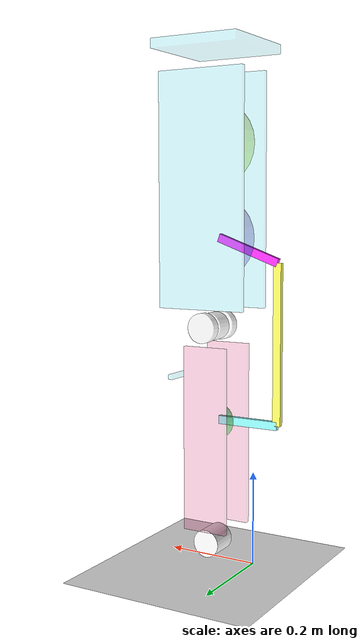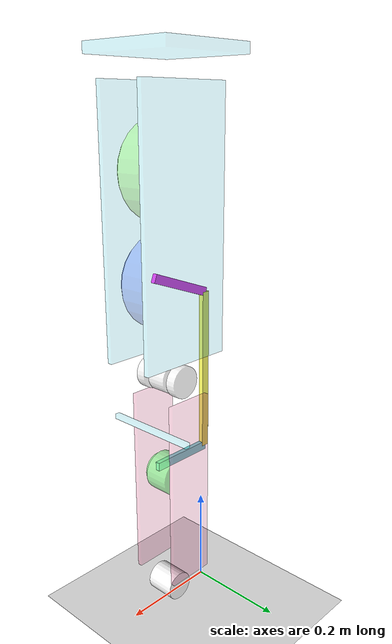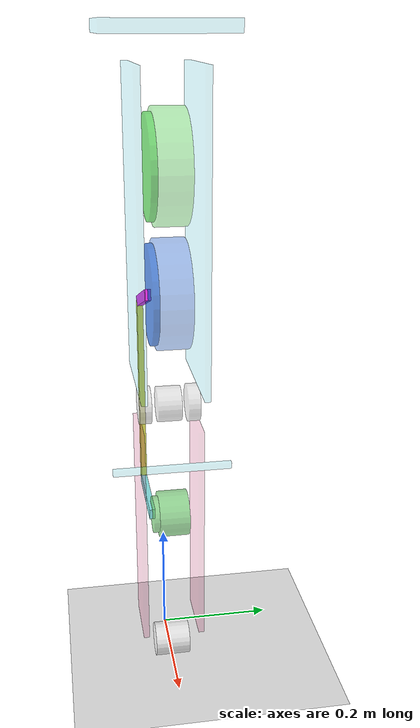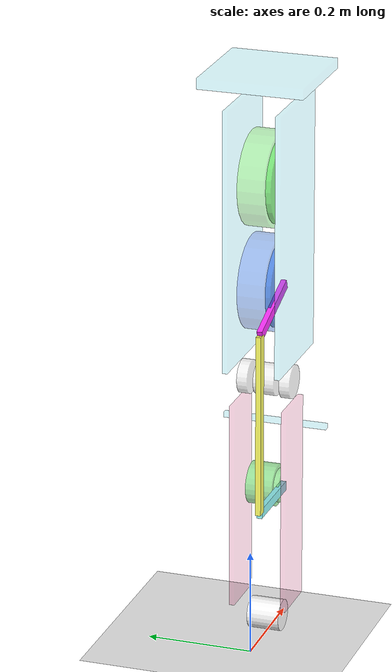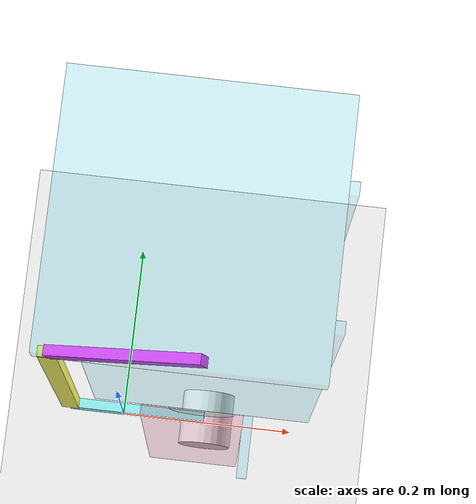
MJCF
<!-- Author: ananth.rachakonda@research.iiit.ac.in-->

<mujoco model="simplified leg">
    <option timestep="0.005" iterations="50" solver="Newton" integrator="RK4" tolerance="1e-10" gravity="0 0 -9.81"/>
    <compiler coordinate="global"/>
    <default>
        <geom rgba="1 .5 .1 1" size="0.01"/>
        <motor ctrllimited="true"/>
        <site type="sphere" rgba=".9 .9 .9 1" size="0.005"/>
    </default>
    <visual>
        <headlight diffuse=".7 .7 .7"/>
    </visual>
    <worldbody>
        <geom name="ground" type="plane" pos="0 0 0" size="1 0.5 2" rgba="1 1 1 1"/>
        <body name="hip">
            <geom name="hip_geom" type="box" size="0.1 0.1 0.01" pos="0.09 0 1.10" rgba=".1 .8 .9 .2" density="3000"/>
            <body name="hip_pitch_motor" pos="0.1 0 0.9"><!--This is the hip pitch motor rotor geom-->
                <geom name="hip_pitch_motor_stator_geom" type="cylinder" fromto="0.1 -0.02065 0.9 0.1 0.03085 0.9"
                      size="0.09" rgba=".3 .9 .3 .4"/>
                <body name="hip_pitch_motor_rotor" pos="0.1 0 0.9">
                    <geom name="hip_pitch_motor_rotor_geom" type="cylinder" fromto="0.1 -0.03085 0.9 0.1 -0.02065 0.9"
                          size="0.082" rgba=".3 .9 .3 .7"/>
                    <joint name="hip_femur_joint" pos="0.1 -0.02575 0.9" range="-90 90" axis="0 1 0" limited="true"
                           springdamper="0 0" damping="0"/>
                </body>
            </body>
        </body>

        <body name="femur" pos="0.1 0 0.800"><!--This is the start femur section-->
            <geom name="thigh_plate_medial" type="box" size="0.1 0.005 0.25" pos="0.1 0.050 0.800" rgba=".1 .8 .9 .2"/>
            <geom name="thigh_plate_lateral" type="box" size="0.1 0.005 0.25" pos="0.1 -0.050 0.800"
                  rgba=".1 .8 .9 .2"/>
            <geom name="patella_cruciate" type="box" size="0.005 0.1 0.005" pos="0.145 0 0.41" rgba=".1 .8 .9 .2"/>
            <joint name="femoral_joint" type="free"/>
            <body name="knee_pitch_motor_stator" pos="0.1 0 0.7">
                <geom name="knee_pitch_motor_stator_geom" type="cylinder" fromto="0.1 -0.02065 0.7 0.1 0.03085 0.7"
                      size="0.09" rgba=".1 .4 .9 .4"/>
                <body name="knee_pitch_motor_rotor" pos="0.1 0 0.7">
                    <geom name="knee_pitch_motor_rotor_geom" type="cylinder" fromto="0.1 -0.03085 0.7 0.1 -0.02065 0.7"
                          size="0.082" rgba=".1 .4 .9 .7"/>
                    <joint name="crank_rotor_joint" pos="0.1 -0.03085 0.7" range="-180 0" axis="0 1 0" limited="true"
                           springdamper="0 0" damping="0"/>
                    <body name="crank" pos="0.029523 -0.03085 0.674348"><!--crank-->
                        <geom name="crank_geom" type="box" size="0.075 0.005 0.009" pos="0.029523 -0.03085 0.674348"
                              axisangle="0 1 0 -20" rgba="1 0.2 1 1" contype="0" conaffinity="0"/>
                        <body><!--coupler-->
                            <geom name="coupler" type="box" size="0.009 0.005 0.174348"
                                  pos="-0.040954 -0.03085 0.474348" rgba="1 1 0.4 1"/>
                            <joint name="coupler_crank_joint" pos="-0.040954 -0.03085 0.648697" range="-90 0" axis="0 1 0" limited="true"
                                   springdamper="0 0" damping="0"/>
                            <body name="rocker"><!--rocker-->
                                <geom name="rocker_geom" type="box" size="0.070477 0.005 0.009"
                                      pos="0.029523 -0.03085 0.300" rgba="0.6 1 1 1" contype="0" conaffinity="0"/>
                                <joint name="rocker_coupler_joint" pos="-0.040954 -0.03085 0.300" range="-100 0" axis="0 1 0" limited="true"
                                       springdamper="0 0"
                                       damping="0"/>
                            </body>
                        </body>
                    </body>
                </body><!--end of motor rotor geom-->
            </body><!--end of motor stator geom-->
            <body name="femur_revolute" pos="0.1 0 0.51"><!--revolute femur cylinder-->
                <geom name="femur_revolute_geom" type="cylinder" fromto="0.1 -0.02 0.51 0.1 0.02 0.51" size="0.030"
                      rgba="1 1 1 0.7"/>
                <body name="tibia_fibula" pos="0.09 0 0.2700"><!--This is the start of tibia fibula section-->
                    <geom name="tibia_plate_left" type="box" size="0.05 0.005 0.2" pos="0.09 -0.050 0.2700" rgba=".8 0 .3 .2"/>
                    <geom name="tibia_plate_right" type="box" size="0.05 0.005 0.2" pos="0.09 0.050 0.2700" rgba=".8 0 .3 .2"/>
                    <geom name="tibia_medial_condyle" type="cylinder" fromto="0.1 -0.05085 0.51 0.1 -0.03085 0.51" size="0.032"
                          rgba="1 1 1 0.7"/>
                    <geom name="tibia_lateral_condyle" type="cylinder" fromto="0.1 0.03085 0.51 0.1 0.05085 0.51" size="0.032"
                          rgba="1 1 1 0.7"/>
                    <joint name="tibial_femoral_revolute_joint" type="hinge" pos="0.1 -0.02 0.51" axis="0 1 0"/>
                    <body><!--This is the knee pitch base 1 motor geom-->
                        <geom name="knee_anchor_stator" type="cylinder" fromto="0.1 -0.02065 0.3 0.1 0.03085 0.3" size="0.04"
                              rgba=".5 .9 .5 .7"/>
                        <body name="knee_anchor_rotor"><!--This is the knee pitch rotor motor geom-->
                            <geom name="knee_anchor_rotor_geom" type="cylinder" fromto="0.1 -0.03085 0.3 0.1 -0.02065 0.3"
                                  size="0.032" rgba=".5 .9 .5 .7"/>
                            <joint name="knee_anchor_rotor_joint" pos="0.1 -0.03085 0.3" range="0 360" axis="0 1 0" limited="true" springdamper="0 0"
                                   damping="0"/>
                        </body>
                        <body name="foot">
                            <geom name="malleoius" type="cylinder" fromto="0.1 -0.03085 0.035 0.1 0.03085 0.035"
                                  size="0.030" rgba="1 1 1 1"/>
                        </body>
                    </body>
                </body><!--This is the end of the tibia fibula section-->
            </body>
        </body><!-- this is the end of the femur section-->

    </worldbody>
    <equality>
        <weld name="crank_knee_pitch_motor_rotor_weld" body1="crank" body2="knee_pitch_motor_rotor"/>
        <weld name="hip_pitch_motor_stator_hip_weld" body1="hip" body2="hip_pitch_motor"/>
        <weld name="hip_pitch_motor_rotor_femur_weld" body1="hip_pitch_motor_rotor" body2="femur"/>
        <weld name="rocker_knee_anchor_rotor_weld" body1="rocker" body2="knee_anchor_rotor"/>
    </equality>
    <actuator>
        <position name="hip_pitch_control" joint="hip_femur_joint" ctrlrange="-10 10" kp="7"/>
        <position name="knee_pitch_control" joint="crank_rotor_joint" ctrlrange="0 18" kp="10"/>
        <velocity name="hip_pitch_rate_control" joint="hip_femur_joint" ctrlrange="-10 10" kv="1"/>
        <velocity name="knee_pitch_rate_control" joint="crank_rotor_joint" ctrlrange="-10 10" kv="1"/>
    </actuator>
</mujoco>
